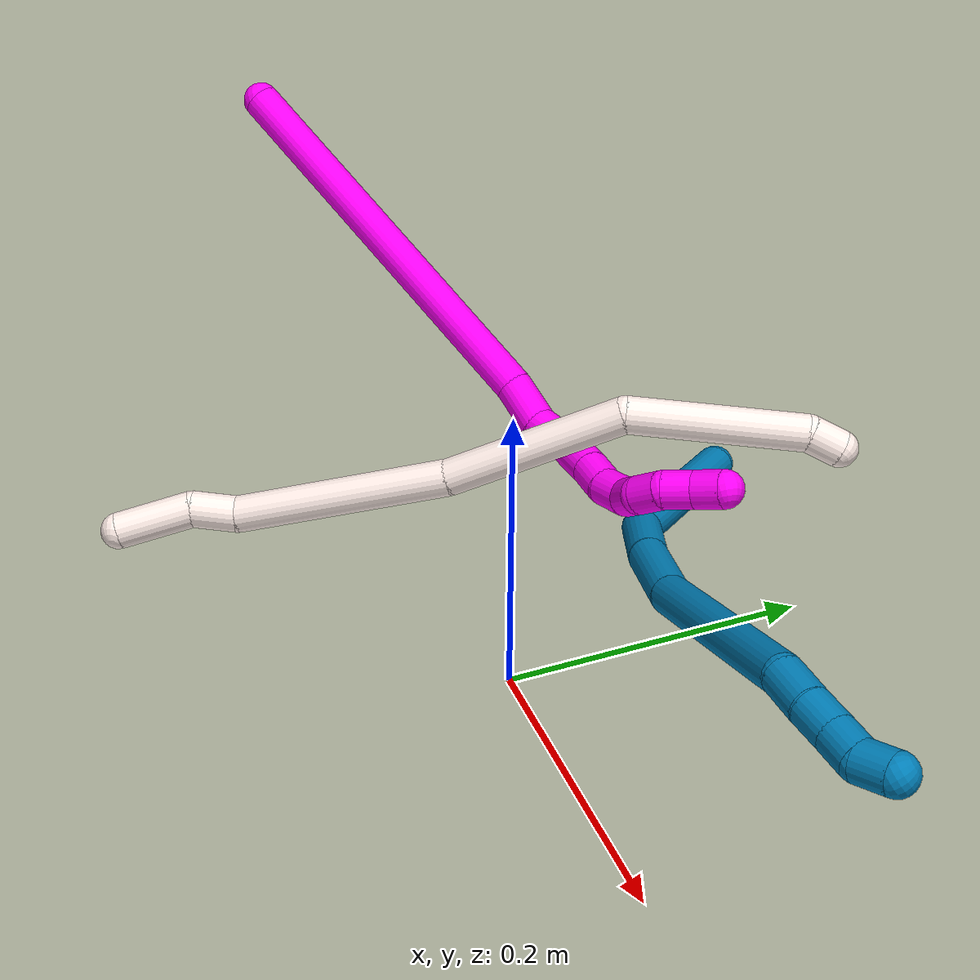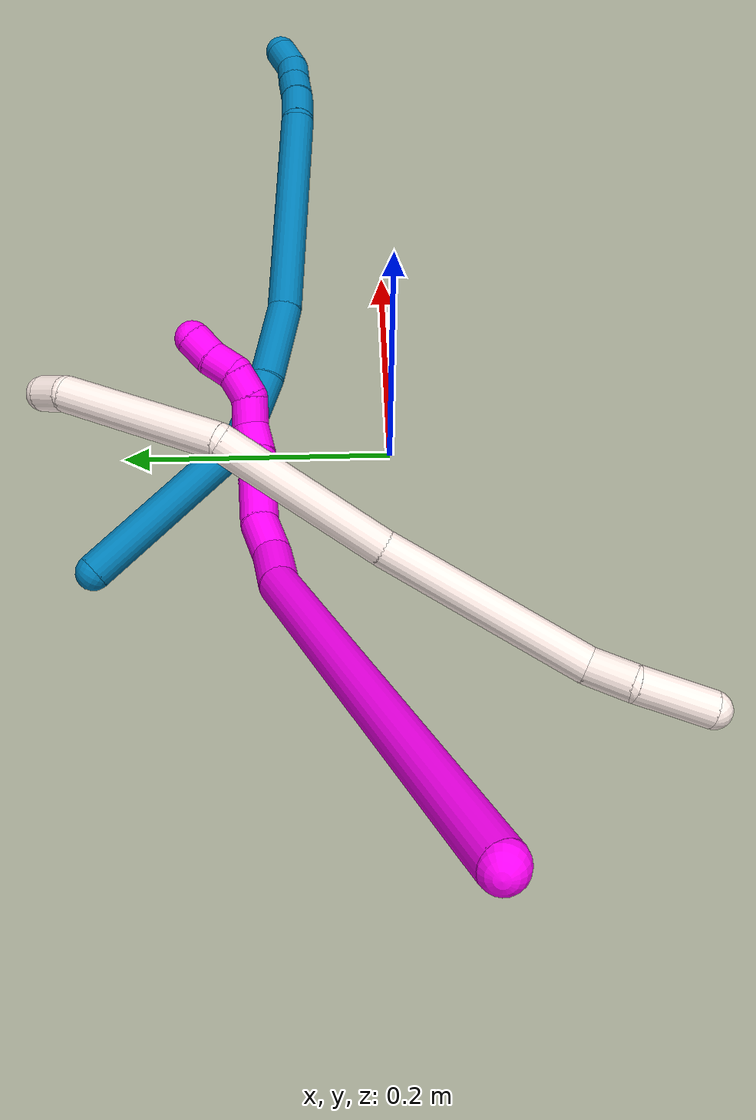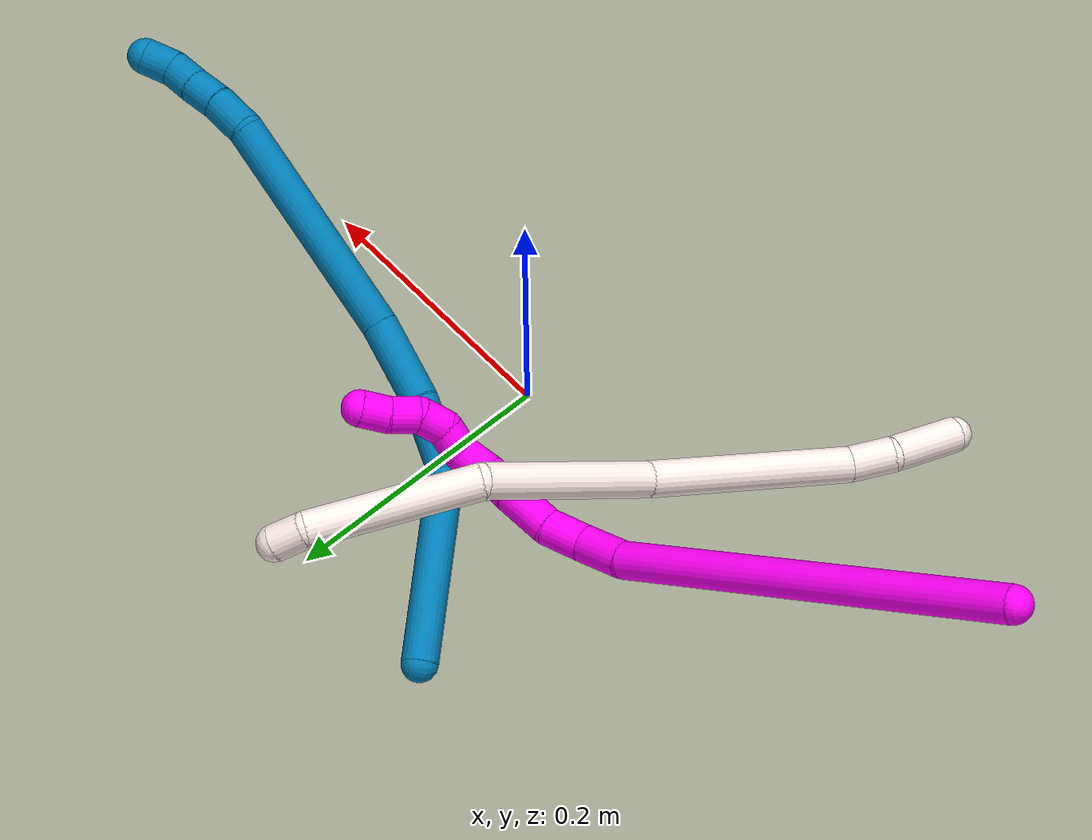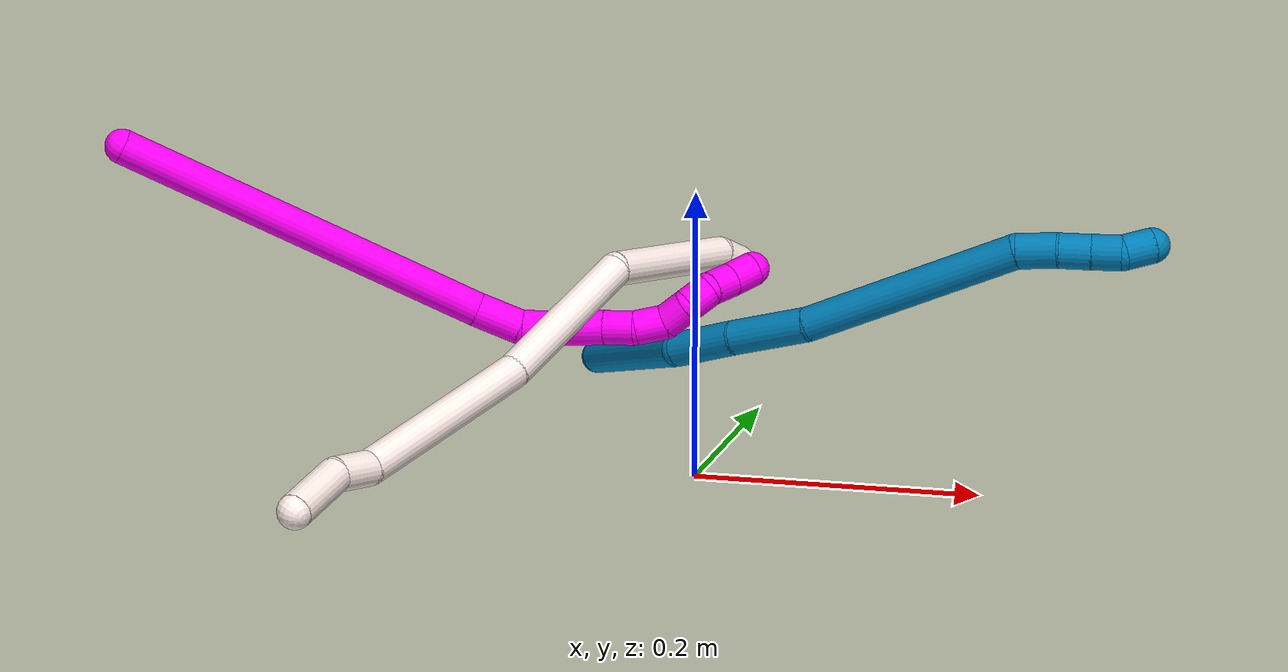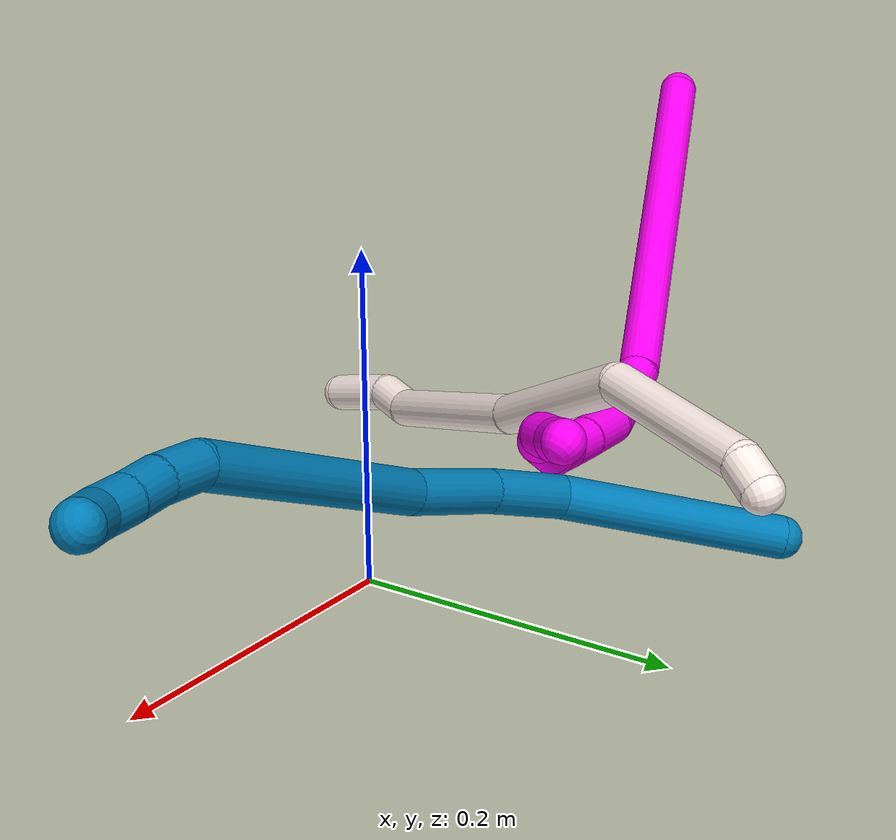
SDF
<sdf version="1.7">
 <world name="default">
  <model name="photoneo_s_sensor">
   <static>1</static>
   <pose>0 0 2 1.57079 1.57079 3.14159</pose>
   <link name="link">
    <inertial><mass>0.1</mass></inertial>
    <sensor name="sensor" type="depth">
     <update_rate>30</update_rate>
     <camera>
      <horizontal_fov>1.22</horizontal_fov>
      <image><width>1920</width><height>1200</height><format>B8G8R8</format></image>
      <clip><near>0.1</near><far>4</far></clip>
      <depth_camera><output>points</output></depth_camera>
     </camera>
     <plugin name="camera_plugin" filename="libgazebo_ros_depth_camera.so">
      <baseline>0.2</baseline>
      <alwaysOn>1</alwaysOn>
      <updateRate>0.0</updateRate>
      <cameraName>camera_ir</cameraName>
      <imageTopicName>/camera/color/image_raw</imageTopicName>
      <cameraInfoTopicName>/camera/color/camera_info</cameraInfoTopicName>
      <depthImageTopicName>/camera/depth/image_raw</depthImageTopicName>
      <depthImageCameraInfoTopicName>/camera/depth/camera_info</depthImageCameraInfoTopicName>
      <pointCloudTopicName>/camera/depth/points</pointCloudTopicName>
      <frameName>fr_optical</frameName>
      <pointCloudCutoff>0.1</pointCloudCutoff>
      <pointCloudCutoffMax>2.0</pointCloudCutoffMax>
      <distortionK1>0</distortionK1>
      <distortionK2>0</distortionK2>
      <distortionK3>0</distortionK3>
      <distortionT1>0</distortionT1>
      <distortionT2>0</distortionT2>
      <CxPrime>0</CxPrime>
      <Cx>0</Cx>
      <Cy>0</Cy>
      <focalLength>0</focalLength>
      <hackBaseline>0</hackBaseline>
     </plugin>
    </sensor>
   </link>
  </model>
  <model name="bin">
   <static>1</static>
   <link name="bottom">
    <collision name="collision-bottom">
     <pose>0 0 -0.01 0 -0 0</pose>
     <geometry><box><size>0.8 0.6 0.02</size></box></geometry>
     <surface>
      <friction><ode><mu>100</mu><mu2>100</mu2></ode></friction>
      <contact><collide_bitmask>65535</collide_bitmask></contact>
     </surface>
    </collision>
   </link>
   <link name="west_wall">
    <collision name="collision-west_wall">
     <pose>-0.41 0 0.1 0 -0 0</pose>
     <geometry><box><size>0.02 0.6 0.2</size></box></geometry>
     <surface>
      <friction><ode><mu>100</mu><mu2>100</mu2></ode></friction>
      <contact><collide_bitmask>65535</collide_bitmask></contact>
     </surface>
    </collision>
   </link>
   <link name="east_wall">
    <collision name="collision-east_wall">
     <pose>0.41 0 0.1 0 -0 0</pose>
     <geometry><box><size>0.02 0.6 0.2</size></box></geometry>
     <surface>
      <friction><ode><mu>100</mu><mu2>100</mu2></ode></friction>
      <contact><collide_bitmask>65535</collide_bitmask></contact>
     </surface>
    </collision>
   </link>
   <link name="south_wall">
    <collision name="collision-south_wall">
     <pose>0 -0.31 0.1 0 -0 0</pose>
     <geometry><box><size>0.8 0.02 0.2</size></box></geometry>
     <surface>
      <friction><ode><mu>100</mu><mu2>100</mu2></ode></friction>
      <contact><collide_bitmask>65535</collide_bitmask></contact>
     </surface>
    </collision>
   </link>
   <link name="north_wall">
    <collision name="collision-north_wall">
     <pose>0 0.31 0.1 0 -0 0</pose>
     <geometry><box><size>0.8 0.02 0.2</size></box></geometry>
     <surface>
      <friction><ode><mu>100</mu><mu2>100</mu2></ode></friction>
      <contact><collide_bitmask>65535</collide_bitmask></contact>
     </surface>
    </collision>
   </link>
  </model>
  <model name="9">
   <static>0</static>
   <link name="9">
    <collision name="collision-cylinder-e_1_1_4">
     <pose>0.037212 -0.049399 -0.024042 2.02373 0.595343 0.912032</pose>
     <geometry><cylinder><radius>0.0125</radius><length>0.13271</length></cylinder></geometry>
     <surface>
      <friction><ode><mu>1.16</mu><mu2>1.16</mu2><slip1>0</slip1><slip2>0</slip2></ode></friction>
      <contact><ode><kp>1e+06</kp><kd>1</kd><max_vel>0</max_vel><min_depth>0.001</min_depth></ode></contact>
     </surface>
    </collision>
    <visual name="visual-cylinder-e_1_1_4">
     <pose>0.037212 -0.049399 -0.024042 2.02373 0.595343 0.912032</pose>
     <geometry><cylinder><radius>0.0125</radius><length>0.13271</length></cylinder></geometry>
     <material><ambient>0 0.490196 0.709804 1</ambient></material>
    </visual>
    <collision name="collision-cylinder-e_2_4_5">
     <pose>0.09473 -0.115004 -0.047162 1.51403 0.896494 0.852916</pose>
     <geometry><cylinder><radius>0.0125</radius><length>0.051992</length></cylinder></geometry>
     <surface>
      <friction><ode><mu>1.16</mu><mu2>1.16</mu2><slip1>0</slip1><slip2>0</slip2></ode></friction>
      <contact><ode><kp>1e+06</kp><kd>1</kd><max_vel>0</max_vel><min_depth>0.001</min_depth></ode></contact>
     </surface>
    </collision>
    <visual name="visual-cylinder-e_2_4_5">
     <pose>0.09473 -0.115004 -0.047162 1.51403 0.896494 0.852916</pose>
     <geometry><cylinder><radius>0.0125</radius><length>0.051992</length></cylinder></geometry>
     <material><ambient>0 0.490196 0.709804 1</ambient></material>
    </visual>
    <collision name="collision-cylinder-e_3_5_6">
     <pose>0.13967 -0.147025 -0.042381 1.33142 0.986766 0.799135</pose>
     <geometry><cylinder><radius>0.0125</radius><length>0.059056</length></cylinder></geometry>
     <surface>
      <friction><ode><mu>1.16</mu><mu2>1.16</mu2><slip1>0</slip1><slip2>0</slip2></ode></friction>
      <contact><ode><kp>1e+06</kp><kd>1</kd><max_vel>0</max_vel><min_depth>0.001</min_depth></ode></contact>
     </surface>
    </collision>
    <visual name="visual-cylinder-e_3_5_6">
     <pose>0.13967 -0.147025 -0.042381 1.33142 0.986766 0.799135</pose>
     <geometry><cylinder><radius>0.0125</radius><length>0.059056</length></cylinder></geometry>
     <material><ambient>0 0.490196 0.709804 1</ambient></material>
    </visual>
    <collision name="collision-cylinder-e_4_6_7">
     <pose>0.227115 -0.207138 -0.013041 1.0488 0.887837 0.536886</pose>
     <geometry><cylinder><radius>0.0125</radius><length>0.161946</length></cylinder></geometry>
     <surface>
      <friction><ode><mu>1.16</mu><mu2>1.16</mu2><slip1>0</slip1><slip2>0</slip2></ode></friction>
      <contact><ode><kp>1e+06</kp><kd>1</kd><max_vel>0</max_vel><min_depth>0.001</min_depth></ode></contact>
     </surface>
    </collision>
    <visual name="visual-cylinder-e_4_6_7">
     <pose>0.227115 -0.207138 -0.013041 1.0488 0.887837 0.536886</pose>
     <geometry><cylinder><radius>0.0125</radius><length>0.161946</length></cylinder></geometry>
     <material><ambient>0 0.490196 0.709804 1</ambient></material>
    </visual>
    <collision name="collision-cylinder-e_5_7_8">
     <pose>0.303355 -0.255179 0.015604 0.869095 1.22066 0.627778</pose>
     <geometry><cylinder><radius>0.0125</radius><length>0.028592</length></cylinder></geometry>
     <surface>
      <friction><ode><mu>1.16</mu><mu2>1.16</mu2><slip1>0</slip1><slip2>0</slip2></ode></friction>
      <contact><ode><kp>1e+06</kp><kd>1</kd><max_vel>0</max_vel><min_depth>0.001</min_depth></ode></contact>
     </surface>
    </collision>
    <visual name="visual-cylinder-e_5_7_8">
     <pose>0.303355 -0.255179 0.015604 0.869095 1.22066 0.627778</pose>
     <geometry><cylinder><radius>0.0125</radius><length>0.028592</length></cylinder></geometry>
     <material><ambient>0 0.490196 0.709804 1</ambient></material>
    </visual>
    <collision name="collision-cylinder-e_6_8_9">
     <pose>0.327733 -0.260518 0.021717 0.495617 1.27387 0.370064</pose>
     <geometry><cylinder><radius>0.0125</radius><length>0.022902</length></cylinder></geometry>
     <surface>
      <friction><ode><mu>1.16</mu><mu2>1.16</mu2><slip1>0</slip1><slip2>0</slip2></ode></friction>
      <contact><ode><kp>1e+06</kp><kd>1</kd><max_vel>0</max_vel><min_depth>0.001</min_depth></ode></contact>
     </surface>
    </collision>
    <visual name="visual-cylinder-e_6_8_9">
     <pose>0.327733 -0.260518 0.021717 0.495617 1.27387 0.370064</pose>
     <geometry><cylinder><radius>0.0125</radius><length>0.022902</length></cylinder></geometry>
     <material><ambient>0 0.490196 0.709804 1</ambient></material>
    </visual>
    <collision name="collision-cylinder-e_7_9_10">
     <pose>0.348789 -0.264118 0.027214 0.666662 1.26013 0.494642</pose>
     <geometry><cylinder><radius>0.0125</radius><length>0.021228</length></cylinder></geometry>
     <surface>
      <friction><ode><mu>1.16</mu><mu2>1.16</mu2><slip1>0</slip1><slip2>0</slip2></ode></friction>
      <contact><ode><kp>1e+06</kp><kd>1</kd><max_vel>0</max_vel><min_depth>0.001</min_depth></ode></contact>
     </surface>
    </collision>
    <visual name="visual-cylinder-e_7_9_10">
     <pose>0.348789 -0.264118 0.027214 0.666662 1.26013 0.494642</pose>
     <geometry><cylinder><radius>0.0125</radius><length>0.021228</length></cylinder></geometry>
     <material><ambient>0 0.490196 0.709804 1</ambient></material>
    </visual>
    <collision name="collision-cylinder-e_8_10_2">
     <pose>0.367254 -0.267167 0.036502 0.153506 0.886582 0.072997</pose>
     <geometry><cylinder><radius>0.0125</radius><length>0.021574</length></cylinder></geometry>
     <surface>
      <friction><ode><mu>1.16</mu><mu2>1.16</mu2><slip1>0</slip1><slip2>0</slip2></ode></friction>
      <contact><ode><kp>1e+06</kp><kd>1</kd><max_vel>0</max_vel><min_depth>0.001</min_depth></ode></contact>
     </surface>
    </collision>
    <visual name="visual-cylinder-e_8_10_2">
     <pose>0.367254 -0.267167 0.036502 0.153506 0.886582 0.072997</pose>
     <geometry><cylinder><radius>0.0125</radius><length>0.021574</length></cylinder></geometry>
     <material><ambient>0 0.490196 0.709804 1</ambient></material>
    </visual>
    <collision name="collision-sphere-2">
     <pose>0.375613 -0.268209 0.04324 0 -0 0</pose>
     <geometry><sphere><radius>0.0125</radius></sphere></geometry>
     <surface>
      <friction><ode><mu>1.16</mu><mu2>1.16</mu2><slip1>0</slip1><slip2>0</slip2></ode></friction>
      <contact><ode><kp>1e+06</kp><kd>1</kd><max_vel>0</max_vel><min_depth>0.001</min_depth></ode></contact>
     </surface>
    </collision>
    <visual name="visual-sphere-2">
     <pose>0.375613 -0.268209 0.04324 0 -0 0</pose>
     <geometry><sphere><radius>0.0125</radius></sphere></geometry>
     <material><ambient>0 0.490196 0.709804 1</ambient></material>
    </visual>
    <collision name="collision-sphere-10">
     <pose>0.358895 -0.266124 0.029764 0 -0 0</pose>
     <geometry><sphere><radius>0.0125</radius></sphere></geometry>
     <surface>
      <friction><ode><mu>1.16</mu><mu2>1.16</mu2><slip1>0</slip1><slip2>0</slip2></ode></friction>
      <contact><ode><kp>1e+06</kp><kd>1</kd><max_vel>0</max_vel><min_depth>0.001</min_depth></ode></contact>
     </surface>
    </collision>
    <visual name="visual-sphere-10">
     <pose>0.358895 -0.266124 0.029764 0 -0 0</pose>
     <geometry><sphere><radius>0.0125</radius></sphere></geometry>
     <material><ambient>0 0.490196 0.709804 1</ambient></material>
    </visual>
    <collision name="collision-sphere-9">
     <pose>0.338683 -0.262112 0.024664 0 -0 0</pose>
     <geometry><sphere><radius>0.0125</radius></sphere></geometry>
     <surface>
      <friction><ode><mu>1.16</mu><mu2>1.16</mu2><slip1>0</slip1><slip2>0</slip2></ode></friction>
      <contact><ode><kp>1e+06</kp><kd>1</kd><max_vel>0</max_vel><min_depth>0.001</min_depth></ode></contact>
     </surface>
    </collision>
    <visual name="visual-sphere-9">
     <pose>0.338683 -0.262112 0.024664 0 -0 0</pose>
     <geometry><sphere><radius>0.0125</radius></sphere></geometry>
     <material><ambient>0 0.490196 0.709804 1</ambient></material>
    </visual>
    <collision name="collision-sphere-4">
     <pose>0.074423 -0.098799 -0.048083 0 -0 0</pose>
     <geometry><sphere><radius>0.0125</radius></sphere></geometry>
     <surface>
      <friction><ode><mu>1.16</mu><mu2>1.16</mu2><slip1>0</slip1><slip2>0</slip2></ode></friction>
      <contact><ode><kp>1e+06</kp><kd>1</kd><max_vel>0</max_vel><min_depth>0.001</min_depth></ode></contact>
     </surface>
    </collision>
    <visual name="visual-sphere-4">
     <pose>0.074423 -0.098799 -0.048083 0 -0 0</pose>
     <geometry><sphere><radius>0.0125</radius></sphere></geometry>
     <material><ambient>0 0.490196 0.709804 1</ambient></material>
    </visual>
    <collision name="collision-sphere-1">
     <geometry><sphere><radius>0.0125</radius></sphere></geometry>
     <surface>
      <friction><ode><mu>1.16</mu><mu2>1.16</mu2><slip1>0</slip1><slip2>0</slip2></ode></friction>
      <contact><ode><kp>1e+06</kp><kd>1</kd><max_vel>0</max_vel><min_depth>0.001</min_depth></ode></contact>
     </surface>
    </collision>
    <visual name="visual-sphere-1">
     <geometry><sphere><radius>0.0125</radius></sphere></geometry>
     <material><ambient>0 0.490196 0.709804 1</ambient></material>
    </visual>
    <collision name="collision-sphere-8">
     <pose>0.316783 -0.258925 0.01877 0 -0 0</pose>
     <geometry><sphere><radius>0.0125</radius></sphere></geometry>
     <surface>
      <friction><ode><mu>1.16</mu><mu2>1.16</mu2><slip1>0</slip1><slip2>0</slip2></ode></friction>
      <contact><ode><kp>1e+06</kp><kd>1</kd><max_vel>0</max_vel><min_depth>0.001</min_depth></ode></contact>
     </surface>
    </collision>
    <visual name="visual-sphere-8">
     <pose>0.316783 -0.258925 0.01877 0 -0 0</pose>
     <geometry><sphere><radius>0.0125</radius></sphere></geometry>
     <material><ambient>0 0.490196 0.709804 1</ambient></material>
    </visual>
    <collision name="collision-sphere-5">
     <pose>0.115036 -0.131208 -0.046242 0 -0 0</pose>
     <geometry><sphere><radius>0.0125</radius></sphere></geometry>
     <surface>
      <friction><ode><mu>1.16</mu><mu2>1.16</mu2><slip1>0</slip1><slip2>0</slip2></ode></friction>
      <contact><ode><kp>1e+06</kp><kd>1</kd><max_vel>0</max_vel><min_depth>0.001</min_depth></ode></contact>
     </surface>
    </collision>
    <visual name="visual-sphere-5">
     <pose>0.115036 -0.131208 -0.046242 0 -0 0</pose>
     <geometry><sphere><radius>0.0125</radius></sphere></geometry>
     <material><ambient>0 0.490196 0.709804 1</ambient></material>
    </visual>
    <collision name="collision-sphere-6">
     <pose>0.164303 -0.162842 -0.038521 0 -0 0</pose>
     <geometry><sphere><radius>0.0125</radius></sphere></geometry>
     <surface>
      <friction><ode><mu>1.16</mu><mu2>1.16</mu2><slip1>0</slip1><slip2>0</slip2></ode></friction>
      <contact><ode><kp>1e+06</kp><kd>1</kd><max_vel>0</max_vel><min_depth>0.001</min_depth></ode></contact>
     </surface>
    </collision>
    <visual name="visual-sphere-6">
     <pose>0.164303 -0.162842 -0.038521 0 -0 0</pose>
     <geometry><sphere><radius>0.0125</radius></sphere></geometry>
     <material><ambient>0 0.490196 0.709804 1</ambient></material>
    </visual>
    <collision name="collision-sphere-7">
     <pose>0.289926 -0.251434 0.012438 0 -0 0</pose>
     <geometry><sphere><radius>0.0125</radius></sphere></geometry>
     <surface>
      <friction><ode><mu>1.16</mu><mu2>1.16</mu2><slip1>0</slip1><slip2>0</slip2></ode></friction>
      <contact><ode><kp>1e+06</kp><kd>1</kd><max_vel>0</max_vel><min_depth>0.001</min_depth></ode></contact>
     </surface>
    </collision>
    <visual name="visual-sphere-7">
     <pose>0.289926 -0.251434 0.012438 0 -0 0</pose>
     <geometry><sphere><radius>0.0125</radius></sphere></geometry>
     <material><ambient>0 0.490196 0.709804 1</ambient></material>
    </visual>
    <inertial>
     <pose>0.172797 -0.158792 -0.015897 0 -0 0</pose>
     <mass>0.5</mass>
     <inertia>
      <ixx>0.000605</ixx>
      <ixy>0</ixy>
      <ixz>0</ixz>
      <iyy>0.000577</iyy>
      <iyz>0</iyz>
      <izz>-5.6e-05</izz>
     </inertia>
    </inertial>
   </link>
   <pose>-0.124332 0.202899 0.031009 -0.982963 0.283571 -0.021487</pose>
  </model>
  <model name="10">
   <static>0</static>
   <link name="10">
    <collision name="collision-cylinder-e_1_1_4">
     <pose>0.036902 0.058815 -0.121459 -2.69063 0.266925 -1.05911</pose>
     <geometry><cylinder><radius>0.0125</radius><length>0.279809</length></cylinder></geometry>
     <surface>
      <friction><ode><mu>1.16</mu><mu2>1.16</mu2><slip1>0</slip1><slip2>0</slip2></ode></friction>
      <contact><ode><kp>1e+06</kp><kd>1</kd><max_vel>0</max_vel><min_depth>0.001</min_depth></ode></contact>
     </surface>
    </collision>
    <visual name="visual-cylinder-e_1_1_4">
     <pose>0.036902 0.058815 -0.121459 -2.69063 0.266925 -1.05911</pose>
     <geometry><cylinder><radius>0.0125</radius><length>0.279809</length></cylinder></geometry>
     <material><ambient>1 0 0.964706 1</ambient></material>
    </visual>
    <collision name="collision-cylinder-e_2_4_5">
     <pose>0.079312 0.120966 -0.258695 -2.93325 0.329111 -2.01781</pose>
     <geometry><cylinder><radius>0.0125</radius><length>0.03408</length></cylinder></geometry>
     <surface>
      <friction><ode><mu>1.16</mu><mu2>1.16</mu2><slip1>0</slip1><slip2>0</slip2></ode></friction>
      <contact><ode><kp>1e+06</kp><kd>1</kd><max_vel>0</max_vel><min_depth>0.001</min_depth></ode></contact>
     </surface>
    </collision>
    <visual name="visual-cylinder-e_2_4_5">
     <pose>0.079312 0.120966 -0.258695 -2.93325 0.329111 -2.01781</pose>
     <geometry><cylinder><radius>0.0125</radius><length>0.03408</length></cylinder></geometry>
     <material><ambient>1 0 0.964706 1</ambient></material>
    </visual>
    <collision name="collision-cylinder-e_3_5_6">
     <pose>0.093509 0.12763 -0.284657 -2.82571 0.681357 -2.29708</pose>
     <geometry><cylinder><radius>0.0125</radius><length>0.027593</length></cylinder></geometry>
     <surface>
      <friction><ode><mu>1.16</mu><mu2>1.16</mu2><slip1>0</slip1><slip2>0</slip2></ode></friction>
      <contact><ode><kp>1e+06</kp><kd>1</kd><max_vel>0</max_vel><min_depth>0.001</min_depth></ode></contact>
     </surface>
    </collision>
    <visual name="visual-cylinder-e_3_5_6">
     <pose>0.093509 0.12763 -0.284657 -2.82571 0.681357 -2.29708</pose>
     <geometry><cylinder><radius>0.0125</radius><length>0.027593</length></cylinder></geometry>
     <material><ambient>1 0 0.964706 1</ambient></material>
    </visual>
    <collision name="collision-cylinder-e_4_6_7">
     <pose>0.113396 0.130437 -0.30743 3.10015 0.726638 3.03267</pose>
     <geometry><cylinder><radius>0.0125</radius><length>0.03371</length></cylinder></geometry>
     <surface>
      <friction><ode><mu>1.16</mu><mu2>1.16</mu2><slip1>0</slip1><slip2>0</slip2></ode></friction>
      <contact><ode><kp>1e+06</kp><kd>1</kd><max_vel>0</max_vel><min_depth>0.001</min_depth></ode></contact>
     </surface>
    </collision>
    <visual name="visual-cylinder-e_4_6_7">
     <pose>0.113396 0.130437 -0.30743 3.10015 0.726638 3.03267</pose>
     <geometry><cylinder><radius>0.0125</radius><length>0.03371</length></cylinder></geometry>
     <material><ambient>1 0 0.964706 1</ambient></material>
    </visual>
    <collision name="collision-cylinder-e_5_7_8">
     <pose>0.131677 0.129074 -0.328595 3.04389 0.687903 2.8703</pose>
     <geometry><cylinder><radius>0.0125</radius><length>0.022313</length></cylinder></geometry>
     <surface>
      <friction><ode><mu>1.16</mu><mu2>1.16</mu2><slip1>0</slip1><slip2>0</slip2></ode></friction>
      <contact><ode><kp>1e+06</kp><kd>1</kd><max_vel>0</max_vel><min_depth>0.001</min_depth></ode></contact>
     </surface>
    </collision>
    <visual name="visual-cylinder-e_5_7_8">
     <pose>0.131677 0.129074 -0.328595 3.04389 0.687903 2.8703</pose>
     <geometry><cylinder><radius>0.0125</radius><length>0.022313</length></cylinder></geometry>
     <material><ambient>1 0 0.964706 1</ambient></material>
    </visual>
    <collision name="collision-cylinder-e_6_8_9">
     <pose>0.14761 0.129112 -0.343934 -3.01244 0.914317 -2.88018</pose>
     <geometry><cylinder><radius>0.0125</radius><length>0.022342</length></cylinder></geometry>
     <surface>
      <friction><ode><mu>1.16</mu><mu2>1.16</mu2><slip1>0</slip1><slip2>0</slip2></ode></friction>
      <contact><ode><kp>1e+06</kp><kd>1</kd><max_vel>0</max_vel><min_depth>0.001</min_depth></ode></contact>
     </surface>
    </collision>
    <visual name="visual-cylinder-e_6_8_9">
     <pose>0.14761 0.129112 -0.343934 -3.01244 0.914317 -2.88018</pose>
     <geometry><cylinder><radius>0.0125</radius><length>0.022342</length></cylinder></geometry>
     <material><ambient>1 0 0.964706 1</ambient></material>
    </visual>
    <collision name="collision-cylinder-e_7_9_10">
     <pose>0.165896 0.127506 -0.353207 2.3618 1.2126 2.07165</pose>
     <geometry><cylinder><radius>0.0125</radius><length>0.020153</length></cylinder></geometry>
     <surface>
      <friction><ode><mu>1.16</mu><mu2>1.16</mu2><slip1>0</slip1><slip2>0</slip2></ode></friction>
      <contact><ode><kp>1e+06</kp><kd>1</kd><max_vel>0</max_vel><min_depth>0.001</min_depth></ode></contact>
     </surface>
    </collision>
    <visual name="visual-cylinder-e_7_9_10">
     <pose>0.165896 0.127506 -0.353207 2.3618 1.2126 2.07165</pose>
     <geometry><cylinder><radius>0.0125</radius><length>0.020153</length></cylinder></geometry>
     <material><ambient>1 0 0.964706 1</ambient></material>
    </visual>
    <collision name="collision-cylinder-e_8_10_11">
     <pose>0.184888 0.127487 -0.357337 -2.15157 1.27148 -1.87842</pose>
     <geometry><cylinder><radius>0.0125</radius><length>0.02</length></cylinder></geometry>
     <surface>
      <friction><ode><mu>1.16</mu><mu2>1.16</mu2><slip1>0</slip1><slip2>0</slip2></ode></friction>
      <contact><ode><kp>1e+06</kp><kd>1</kd><max_vel>0</max_vel><min_depth>0.001</min_depth></ode></contact>
     </surface>
    </collision>
    <visual name="visual-cylinder-e_8_10_11">
     <pose>0.184888 0.127487 -0.357337 -2.15157 1.27148 -1.87842</pose>
     <geometry><cylinder><radius>0.0125</radius><length>0.02</length></cylinder></geometry>
     <material><ambient>1 0 0.964706 1</ambient></material>
    </visual>
    <collision name="collision-cylinder-e_9_11_12">
     <pose>0.201604 0.136538 -0.361271 -1.90891 0.798116 -1.07386</pose>
     <geometry><cylinder><radius>0.0125</radius><length>0.02</length></cylinder></geometry>
     <surface>
      <friction><ode><mu>1.16</mu><mu2>1.16</mu2><slip1>0</slip1><slip2>0</slip2></ode></friction>
      <contact><ode><kp>1e+06</kp><kd>1</kd><max_vel>0</max_vel><min_depth>0.001</min_depth></ode></contact>
     </surface>
    </collision>
    <visual name="visual-cylinder-e_9_11_12">
     <pose>0.201604 0.136538 -0.361271 -1.90891 0.798116 -1.07386</pose>
     <geometry><cylinder><radius>0.0125</radius><length>0.02</length></cylinder></geometry>
     <material><ambient>1 0 0.964706 1</ambient></material>
    </visual>
    <collision name="collision-cylinder-e_10_12_2">
     <pose>0.217136 0.147892 -0.366265 -2.08271 0.992041 -1.49267</pose>
     <geometry><cylinder><radius>0.0125</radius><length>0.02</length></cylinder></geometry>
     <surface>
      <friction><ode><mu>1.16</mu><mu2>1.16</mu2><slip1>0</slip1><slip2>0</slip2></ode></friction>
      <contact><ode><kp>1e+06</kp><kd>1</kd><max_vel>0</max_vel><min_depth>0.001</min_depth></ode></contact>
     </surface>
    </collision>
    <visual name="visual-cylinder-e_10_12_2">
     <pose>0.217136 0.147892 -0.366265 -2.08271 0.992041 -1.49267</pose>
     <geometry><cylinder><radius>0.0125</radius><length>0.02</length></cylinder></geometry>
     <material><ambient>1 0 0.964706 1</ambient></material>
    </visual>
    <collision name="collision-sphere-2">
     <pose>0.225507 0.15266 -0.368945 0 -0 0</pose>
     <geometry><sphere><radius>0.0125</radius></sphere></geometry>
     <surface>
      <friction><ode><mu>1.16</mu><mu2>1.16</mu2><slip1>0</slip1><slip2>0</slip2></ode></friction>
      <contact><ode><kp>1e+06</kp><kd>1</kd><max_vel>0</max_vel><min_depth>0.001</min_depth></ode></contact>
     </surface>
    </collision>
    <visual name="visual-sphere-2">
     <pose>0.225507 0.15266 -0.368945 0 -0 0</pose>
     <geometry><sphere><radius>0.0125</radius></sphere></geometry>
     <material><ambient>1 0 0.964706 1</ambient></material>
    </visual>
    <collision name="collision-sphere-12">
     <pose>0.208765 0.143123 -0.363586 0 -0 0</pose>
     <geometry><sphere><radius>0.0125</radius></sphere></geometry>
     <surface>
      <friction><ode><mu>1.16</mu><mu2>1.16</mu2><slip1>0</slip1><slip2>0</slip2></ode></friction>
      <contact><ode><kp>1e+06</kp><kd>1</kd><max_vel>0</max_vel><min_depth>0.001</min_depth></ode></contact>
     </surface>
    </collision>
    <visual name="visual-sphere-12">
     <pose>0.208765 0.143123 -0.363586 0 -0 0</pose>
     <geometry><sphere><radius>0.0125</radius></sphere></geometry>
     <material><ambient>1 0 0.964706 1</ambient></material>
    </visual>
    <collision name="collision-sphere-11">
     <pose>0.194444 0.129952 -0.358955 0 -0 0</pose>
     <geometry><sphere><radius>0.0125</radius></sphere></geometry>
     <surface>
      <friction><ode><mu>1.16</mu><mu2>1.16</mu2><slip1>0</slip1><slip2>0</slip2></ode></friction>
      <contact><ode><kp>1e+06</kp><kd>1</kd><max_vel>0</max_vel><min_depth>0.001</min_depth></ode></contact>
     </surface>
    </collision>
    <visual name="visual-sphere-11">
     <pose>0.194444 0.129952 -0.358955 0 -0 0</pose>
     <geometry><sphere><radius>0.0125</radius></sphere></geometry>
     <material><ambient>1 0 0.964706 1</ambient></material>
    </visual>
    <collision name="collision-sphere-10">
     <pose>0.175333 0.125022 -0.355719 0 -0 0</pose>
     <geometry><sphere><radius>0.0125</radius></sphere></geometry>
     <surface>
      <friction><ode><mu>1.16</mu><mu2>1.16</mu2><slip1>0</slip1><slip2>0</slip2></ode></friction>
      <contact><ode><kp>1e+06</kp><kd>1</kd><max_vel>0</max_vel><min_depth>0.001</min_depth></ode></contact>
     </surface>
    </collision>
    <visual name="visual-sphere-10">
     <pose>0.175333 0.125022 -0.355719 0 -0 0</pose>
     <geometry><sphere><radius>0.0125</radius></sphere></geometry>
     <material><ambient>1 0 0.964706 1</ambient></material>
    </visual>
    <collision name="collision-sphere-9">
     <pose>0.156459 0.12999 -0.350695 0 -0 0</pose>
     <geometry><sphere><radius>0.0125</radius></sphere></geometry>
     <surface>
      <friction><ode><mu>1.16</mu><mu2>1.16</mu2><slip1>0</slip1><slip2>0</slip2></ode></friction>
      <contact><ode><kp>1e+06</kp><kd>1</kd><max_vel>0</max_vel><min_depth>0.001</min_depth></ode></contact>
     </surface>
    </collision>
    <visual name="visual-sphere-9">
     <pose>0.156459 0.12999 -0.350695 0 -0 0</pose>
     <geometry><sphere><radius>0.0125</radius></sphere></geometry>
     <material><ambient>1 0 0.964706 1</ambient></material>
    </visual>
    <collision name="collision-sphere-4">
     <pose>0.073804 0.11763 -0.242918 0 -0 0</pose>
     <geometry><sphere><radius>0.0125</radius></sphere></geometry>
     <surface>
      <friction><ode><mu>1.16</mu><mu2>1.16</mu2><slip1>0</slip1><slip2>0</slip2></ode></friction>
      <contact><ode><kp>1e+06</kp><kd>1</kd><max_vel>0</max_vel><min_depth>0.001</min_depth></ode></contact>
     </surface>
    </collision>
    <visual name="visual-sphere-4">
     <pose>0.073804 0.11763 -0.242918 0 -0 0</pose>
     <geometry><sphere><radius>0.0125</radius></sphere></geometry>
     <material><ambient>1 0 0.964706 1</ambient></material>
    </visual>
    <collision name="collision-sphere-1">
     <geometry><sphere><radius>0.0125</radius></sphere></geometry>
     <surface>
      <friction><ode><mu>1.16</mu><mu2>1.16</mu2><slip1>0</slip1><slip2>0</slip2></ode></friction>
      <contact><ode><kp>1e+06</kp><kd>1</kd><max_vel>0</max_vel><min_depth>0.001</min_depth></ode></contact>
     </surface>
    </collision>
    <visual name="visual-sphere-1">
     <geometry><sphere><radius>0.0125</radius></sphere></geometry>
     <material><ambient>1 0 0.964706 1</ambient></material>
    </visual>
    <collision name="collision-sphere-8">
     <pose>0.138761 0.128233 -0.337173 0 -0 0</pose>
     <geometry><sphere><radius>0.0125</radius></sphere></geometry>
     <surface>
      <friction><ode><mu>1.16</mu><mu2>1.16</mu2><slip1>0</slip1><slip2>0</slip2></ode></friction>
      <contact><ode><kp>1e+06</kp><kd>1</kd><max_vel>0</max_vel><min_depth>0.001</min_depth></ode></contact>
     </surface>
    </collision>
    <visual name="visual-sphere-8">
     <pose>0.138761 0.128233 -0.337173 0 -0 0</pose>
     <geometry><sphere><radius>0.0125</radius></sphere></geometry>
     <material><ambient>1 0 0.964706 1</ambient></material>
    </visual>
    <collision name="collision-sphere-5">
     <pose>0.084819 0.124301 -0.274472 0 -0 0</pose>
     <geometry><sphere><radius>0.0125</radius></sphere></geometry>
     <surface>
      <friction><ode><mu>1.16</mu><mu2>1.16</mu2><slip1>0</slip1><slip2>0</slip2></ode></friction>
      <contact><ode><kp>1e+06</kp><kd>1</kd><max_vel>0</max_vel><min_depth>0.001</min_depth></ode></contact>
     </surface>
    </collision>
    <visual name="visual-sphere-5">
     <pose>0.084819 0.124301 -0.274472 0 -0 0</pose>
     <geometry><sphere><radius>0.0125</radius></sphere></geometry>
     <material><ambient>1 0 0.964706 1</ambient></material>
    </visual>
    <collision name="collision-sphere-6">
     <pose>0.102198 0.130959 -0.294843 0 -0 0</pose>
     <geometry><sphere><radius>0.0125</radius></sphere></geometry>
     <surface>
      <friction><ode><mu>1.16</mu><mu2>1.16</mu2><slip1>0</slip1><slip2>0</slip2></ode></friction>
      <contact><ode><kp>1e+06</kp><kd>1</kd><max_vel>0</max_vel><min_depth>0.001</min_depth></ode></contact>
     </surface>
    </collision>
    <visual name="visual-sphere-6">
     <pose>0.102198 0.130959 -0.294843 0 -0 0</pose>
     <geometry><sphere><radius>0.0125</radius></sphere></geometry>
     <material><ambient>1 0 0.964706 1</ambient></material>
    </visual>
    <collision name="collision-sphere-7">
     <pose>0.124594 0.129915 -0.320017 0 -0 0</pose>
     <geometry><sphere><radius>0.0125</radius></sphere></geometry>
     <surface>
      <friction><ode><mu>1.16</mu><mu2>1.16</mu2><slip1>0</slip1><slip2>0</slip2></ode></friction>
      <contact><ode><kp>1e+06</kp><kd>1</kd><max_vel>0</max_vel><min_depth>0.001</min_depth></ode></contact>
     </surface>
    </collision>
    <visual name="visual-sphere-7">
     <pose>0.124594 0.129915 -0.320017 0 -0 0</pose>
     <geometry><sphere><radius>0.0125</radius></sphere></geometry>
     <material><ambient>1 0 0.964706 1</ambient></material>
    </visual>
    <inertial>
     <pose>0.082166 0.090142 -0.209703 0 -0 0</pose>
     <mass>0.5</mass>
     <inertia>
      <ixx>-0.000675</ixx>
      <ixy>0</ixy>
      <ixz>0</ixz>
      <iyy>-0.002148</iyy>
      <iyz>0</iyz>
      <izz>-0.001302</izz>
     </inertia>
    </inertial>
   </link>
   <pose>-0.407718 -0.027252 0.218303 -0.493691 -0.834232 0.468259</pose>
  </model>
  <model name="11">
   <static>0</static>
   <link name="11">
    <collision name="collision-cylinder-e_1_1_4">
     <pose>-0.010627 -0.00403 -0.000203 1.62108 -1.20794 -1.25537</pose>
     <geometry><cylinder><radius>0.0125</radius><length>0.022734</length></cylinder></geometry>
     <surface>
      <friction><ode><mu>1.16</mu><mu2>1.16</mu2><slip1>0</slip1><slip2>0</slip2></ode></friction>
      <contact><ode><kp>1e+06</kp><kd>1</kd><max_vel>0</max_vel><min_depth>0.001</min_depth></ode></contact>
     </surface>
    </collision>
    <visual name="visual-cylinder-e_1_1_4">
     <pose>-0.010627 -0.00403 -0.000203 1.62108 -1.20794 -1.25537</pose>
     <geometry><cylinder><radius>0.0125</radius><length>0.022734</length></cylinder></geometry>
     <material><ambient>1 0.933333 0.909804 1</ambient></material>
    </visual>
    <collision name="collision-cylinder-e_2_4_5">
     <pose>-0.06542 -0.046221 0.00829 1.34677 -0.845669 -0.689309</pose>
     <geometry><cylinder><radius>0.0125</radius><length>0.118028</length></cylinder></geometry>
     <surface>
      <friction><ode><mu>1.16</mu><mu2>1.16</mu2><slip1>0</slip1><slip2>0</slip2></ode></friction>
      <contact><ode><kp>1e+06</kp><kd>1</kd><max_vel>0</max_vel><min_depth>0.001</min_depth></ode></contact>
     </surface>
    </collision>
    <visual name="visual-cylinder-e_2_4_5">
     <pose>-0.06542 -0.046221 0.00829 1.34677 -0.845669 -0.689309</pose>
     <geometry><cylinder><radius>0.0125</radius><length>0.118028</length></cylinder></geometry>
     <material><ambient>1 0.933333 0.909804 1</ambient></material>
    </visual>
    <collision name="collision-cylinder-e_3_5_6">
     <pose>-0.130683 -0.141081 0.034806 1.26626 -0.341076 -0.251444</pose>
     <geometry><cylinder><radius>0.0125</radius><length>0.126132</length></cylinder></geometry>
     <surface>
      <friction><ode><mu>1.16</mu><mu2>1.16</mu2><slip1>0</slip1><slip2>0</slip2></ode></friction>
      <contact><ode><kp>1e+06</kp><kd>1</kd><max_vel>0</max_vel><min_depth>0.001</min_depth></ode></contact>
     </surface>
    </collision>
    <visual name="visual-cylinder-e_3_5_6">
     <pose>-0.130683 -0.141081 0.034806 1.26626 -0.341076 -0.251444</pose>
     <geometry><cylinder><radius>0.0125</radius><length>0.126132</length></cylinder></geometry>
     <material><ambient>1 0.933333 0.909804 1</ambient></material>
    </visual>
    <collision name="collision-cylinder-e_4_6_7">
     <pose>-0.187777 -0.261309 0.068547 1.32526 -0.502565 -0.395401</pose>
     <geometry><cylinder><radius>0.0125</radius><length>0.149471</length></cylinder></geometry>
     <surface>
      <friction><ode><mu>1.16</mu><mu2>1.16</mu2><slip1>0</slip1><slip2>0</slip2></ode></friction>
      <contact><ode><kp>1e+06</kp><kd>1</kd><max_vel>0</max_vel><min_depth>0.001</min_depth></ode></contact>
     </surface>
    </collision>
    <visual name="visual-cylinder-e_4_6_7">
     <pose>-0.187777 -0.261309 0.068547 1.32526 -0.502565 -0.395401</pose>
     <geometry><cylinder><radius>0.0125</radius><length>0.149471</length></cylinder></geometry>
     <material><ambient>1 0.933333 0.909804 1</ambient></material>
    </visual>
    <collision name="collision-cylinder-e_5_7_8">
     <pose>-0.235363 -0.33534 0.086328 1.39536 -0.826861 -0.704867</pose>
     <geometry><cylinder><radius>0.0125</radius><length>0.031496</length></cylinder></geometry>
     <surface>
      <friction><ode><mu>1.16</mu><mu2>1.16</mu2><slip1>0</slip1><slip2>0</slip2></ode></friction>
      <contact><ode><kp>1e+06</kp><kd>1</kd><max_vel>0</max_vel><min_depth>0.001</min_depth></ode></contact>
     </surface>
    </collision>
    <visual name="visual-cylinder-e_5_7_8">
     <pose>-0.235363 -0.33534 0.086328 1.39536 -0.826861 -0.704867</pose>
     <geometry><cylinder><radius>0.0125</radius><length>0.031496</length></cylinder></geometry>
     <material><ambient>1 0.933333 0.909804 1</ambient></material>
    </visual>
    <collision name="collision-cylinder-e_6_8_2">
     <pose>-0.260003 -0.36559 0.099109 1.06575 -0.524388 -0.313958</pose>
     <geometry><cylinder><radius>0.0125</radius><length>0.05214</length></cylinder></geometry>
     <surface>
      <friction><ode><mu>1.16</mu><mu2>1.16</mu2><slip1>0</slip1><slip2>0</slip2></ode></friction>
      <contact><ode><kp>1e+06</kp><kd>1</kd><max_vel>0</max_vel><min_depth>0.001</min_depth></ode></contact>
     </surface>
    </collision>
    <visual name="visual-cylinder-e_6_8_2">
     <pose>-0.260003 -0.36559 0.099109 1.06575 -0.524388 -0.313958</pose>
     <geometry><cylinder><radius>0.0125</radius><length>0.05214</length></cylinder></geometry>
     <material><ambient>1 0.933333 0.909804 1</ambient></material>
    </visual>
    <collision name="collision-sphere-2">
     <pose>-0.273055 -0.38534 0.110028 0 -0 0</pose>
     <geometry><sphere><radius>0.0125</radius></sphere></geometry>
     <surface>
      <friction><ode><mu>1.16</mu><mu2>1.16</mu2><slip1>0</slip1><slip2>0</slip2></ode></friction>
      <contact><ode><kp>1e+06</kp><kd>1</kd><max_vel>0</max_vel><min_depth>0.001</min_depth></ode></contact>
     </surface>
    </collision>
    <visual name="visual-sphere-2">
     <pose>-0.273055 -0.38534 0.110028 0 -0 0</pose>
     <geometry><sphere><radius>0.0125</radius></sphere></geometry>
     <material><ambient>1 0.933333 0.909804 1</ambient></material>
    </visual>
    <collision name="collision-sphere-4">
     <pose>-0.021253 -0.008059 -0.000406 0 -0 0</pose>
     <geometry><sphere><radius>0.0125</radius></sphere></geometry>
     <surface>
      <friction><ode><mu>1.16</mu><mu2>1.16</mu2><slip1>0</slip1><slip2>0</slip2></ode></friction>
      <contact><ode><kp>1e+06</kp><kd>1</kd><max_vel>0</max_vel><min_depth>0.001</min_depth></ode></contact>
     </surface>
    </collision>
    <visual name="visual-sphere-4">
     <pose>-0.021253 -0.008059 -0.000406 0 -0 0</pose>
     <geometry><sphere><radius>0.0125</radius></sphere></geometry>
     <material><ambient>1 0.933333 0.909804 1</ambient></material>
    </visual>
    <collision name="collision-sphere-1">
     <geometry><sphere><radius>0.0125</radius></sphere></geometry>
     <surface>
      <friction><ode><mu>1.16</mu><mu2>1.16</mu2><slip1>0</slip1><slip2>0</slip2></ode></friction>
      <contact><ode><kp>1e+06</kp><kd>1</kd><max_vel>0</max_vel><min_depth>0.001</min_depth></ode></contact>
     </surface>
    </collision>
    <visual name="visual-sphere-1">
     <geometry><sphere><radius>0.0125</radius></sphere></geometry>
     <material><ambient>1 0.933333 0.909804 1</ambient></material>
    </visual>
    <collision name="collision-sphere-8">
     <pose>-0.24695 -0.345841 0.08819 0 -0 0</pose>
     <geometry><sphere><radius>0.0125</radius></sphere></geometry>
     <surface>
      <friction><ode><mu>1.16</mu><mu2>1.16</mu2><slip1>0</slip1><slip2>0</slip2></ode></friction>
      <contact><ode><kp>1e+06</kp><kd>1</kd><max_vel>0</max_vel><min_depth>0.001</min_depth></ode></contact>
     </surface>
    </collision>
    <visual name="visual-sphere-8">
     <pose>-0.24695 -0.345841 0.08819 0 -0 0</pose>
     <geometry><sphere><radius>0.0125</radius></sphere></geometry>
     <material><ambient>1 0.933333 0.909804 1</ambient></material>
    </visual>
    <collision name="collision-sphere-5">
     <pose>-0.109587 -0.084383 0.016985 0 -0 0</pose>
     <geometry><sphere><radius>0.0125</radius></sphere></geometry>
     <surface>
      <friction><ode><mu>1.16</mu><mu2>1.16</mu2><slip1>0</slip1><slip2>0</slip2></ode></friction>
      <contact><ode><kp>1e+06</kp><kd>1</kd><max_vel>0</max_vel><min_depth>0.001</min_depth></ode></contact>
     </surface>
    </collision>
    <visual name="visual-sphere-5">
     <pose>-0.109587 -0.084383 0.016985 0 -0 0</pose>
     <geometry><sphere><radius>0.0125</radius></sphere></geometry>
     <material><ambient>1 0.933333 0.909804 1</ambient></material>
    </visual>
    <collision name="collision-sphere-6">
     <pose>-0.151778 -0.197779 0.052627 0 -0 0</pose>
     <geometry><sphere><radius>0.0125</radius></sphere></geometry>
     <surface>
      <friction><ode><mu>1.16</mu><mu2>1.16</mu2><slip1>0</slip1><slip2>0</slip2></ode></friction>
      <contact><ode><kp>1e+06</kp><kd>1</kd><max_vel>0</max_vel><min_depth>0.001</min_depth></ode></contact>
     </surface>
    </collision>
    <visual name="visual-sphere-6">
     <pose>-0.151778 -0.197779 0.052627 0 -0 0</pose>
     <geometry><sphere><radius>0.0125</radius></sphere></geometry>
     <material><ambient>1 0.933333 0.909804 1</ambient></material>
    </visual>
    <collision name="collision-sphere-7">
     <pose>-0.223775 -0.324839 0.084467 0 -0 0</pose>
     <geometry><sphere><radius>0.0125</radius></sphere></geometry>
     <surface>
      <friction><ode><mu>1.16</mu><mu2>1.16</mu2><slip1>0</slip1><slip2>0</slip2></ode></friction>
      <contact><ode><kp>1e+06</kp><kd>1</kd><max_vel>0</max_vel><min_depth>0.001</min_depth></ode></contact>
     </surface>
    </collision>
    <visual name="visual-sphere-7">
     <pose>-0.223775 -0.324839 0.084467 0 -0 0</pose>
     <geometry><sphere><radius>0.0125</radius></sphere></geometry>
     <material><ambient>1 0.933333 0.909804 1</ambient></material>
    </visual>
    <inertial>
     <pose>-0.146966 -0.184047 0.046992 0 -0 0</pose>
     <mass>0.5</mass>
     <inertia><ixx>0.00025</ixx><ixy>0</ixy><ixz>0</ixz><iyy>4.9e-05</iyy><iyz>0</iyz><izz>0.000822</izz></inertia>
    </inertial>
   </link>
   <pose>-0.02531 0.237917 0.101125 1.92915 0.784561 1.20583</pose>
  </model>
 </world>
</sdf>
